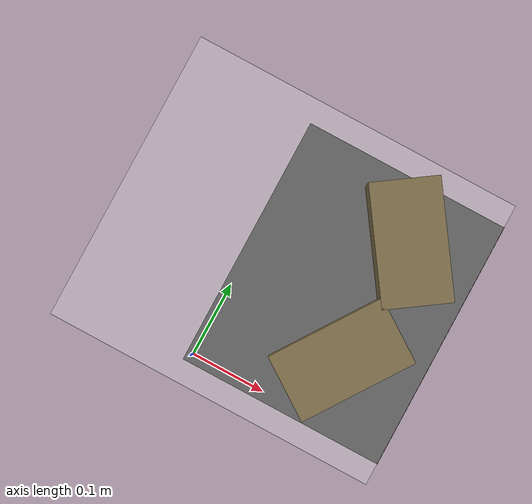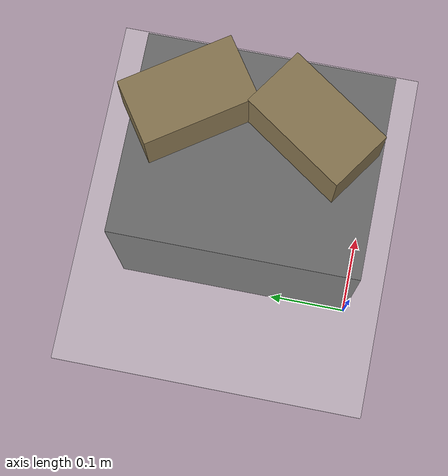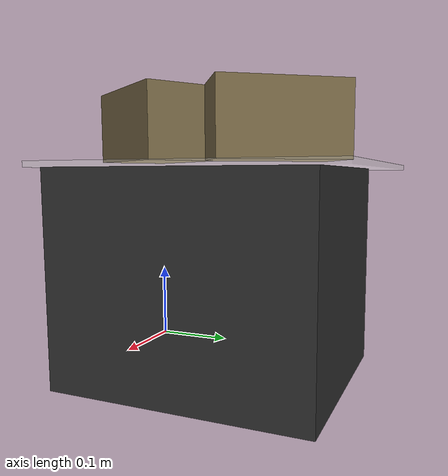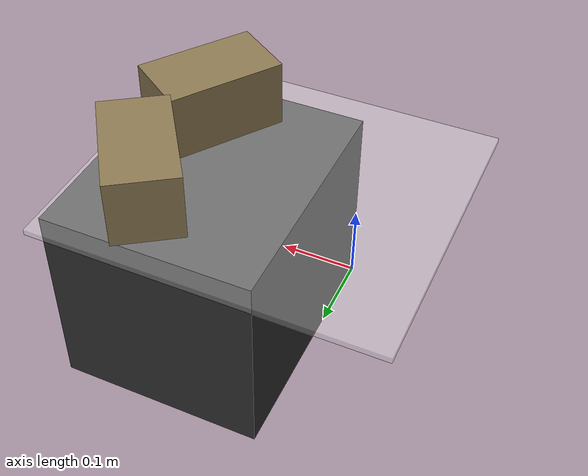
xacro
<robot name="suporte_description">
<!-- modificacoes do robo original -->

	<link name="box_link">
		<mass value="0.1" />
		<visual>
			<origin rpy="0 0 0" xyz="0.125 0.152 0.124" />
			<geometry>
				<box size="0.250 0.304 0.248" />
			</geometry>
			<material name="gray">
				<color rgba="0.2 0.2 0.2 1" />
			</material>
		</visual>
		<collision>
			<origin rpy="0 0 0" xyz="0.125 0.152 0.124" />
			<geometry>
				<box size="0.250 0.304 0.248" />
			</geometry>
		</collision>
	</link>

	<link name="acrylic_link">
		<mass value="0.1" />
		<visual>
			<origin rpy="0 0 0" xyz="0.2025 0.1785 0.0035" />
			<geometry>
				<box size="0.405 0.357 0.007" />
			</geometry>
			<material name="white_transp">
				<color rgba="1 1 1 0.3" />
			</material>
		</visual>
		<collision>
			<origin rpy="0 0 0" xyz="0.2025 0.1785 0.0035" />
			<geometry>
				<box size="0.405 0.357 0.007" />
			</geometry>
		</collision>
	</link>

	<link name="kinectbaseR_link">
		<mass value="0.1" />
		<visual>
			<origin rpy="0 0 0" xyz="0.04 0.07 0.04" />
			<geometry>
				<box size="0.08 0.14 0.08" />
			</geometry>
			<material name="bronze">
				<color rgba="0.54 0.47 0.32 1" />
			</material>
		</visual>
		<collision>
			<origin rpy="0 0 0" xyz="0.04 0.07 0.04" />
			<geometry>
				<box size="0.08 0.14 0.08" />
			</geometry>
		</collision>
	</link>

	<link name="kinectbaseL_link">
		<mass value="0.1" />
		<visual>
			<origin rpy="0 0 0" xyz="0.04 -0.07 0.04" />
			<geometry>
				<box size="0.08 0.14 0.08" />
			</geometry>
			<material name="bronze">
				<color rgba="0.54 0.47 0.32 1" />
			</material>
		</visual>
		<collision>
			<origin rpy="0 0 0" xyz="0.04 -0.07 0.04" />
			<geometry>
				<box size="0.08 0.14 0.08" />
			</geometry>
		</collision>
	</link>

	<joint name="box_acrylic_joint" type="fixed">
		<origin rpy="0 0 0" xyz="-0.156 -0.026 0.248" />
		<parent link="box_link" />
		<child link="acrylic_link" />
	</joint>

	<joint name="acrylic_kinectbaseR_joint" type="fixed">
		<origin rpy="0 0 -0.6" xyz="0.239 0.076 0.007" />
		<parent link="acrylic_link" />
		<child link="kinectbaseR_link" />
	</joint>

	<joint name="acrylic_kinectbaseL_joint" type="fixed">
		<origin rpy="0 0 0.6" xyz="0.245 0.295 0.007" />
		<parent link="acrylic_link" />
		<child link="kinectbaseL_link" />
	</joint>

</robot>
